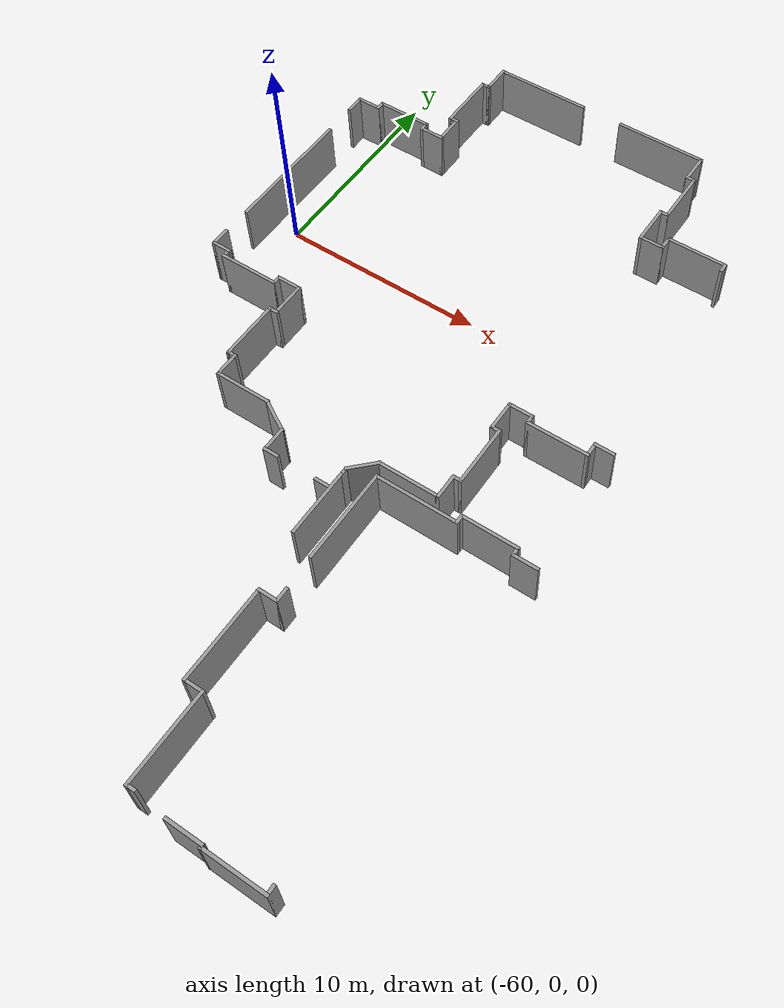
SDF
<sdf version="1.7">
 <model name="Building_1">
  <pose>-6.53713 -6.30976 0 0 -0 0</pose>
  <link name="Wall_13">
   <collision name="Wall_13_Collision">
    <geometry><box><size>0.5 0.15 2.5</size></box></geometry>
    <pose>0 0 1.25 0 -0 0</pose>
   </collision>
   <visual name="Wall_13_Visual">
    <pose>0 0 1.25 0 -0 0</pose>
    <geometry><box><size>0.5 0.15 2.5</size></box></geometry>
    <material>
     <script><uri>file://media/materials/scripts/gazebo.material</uri><name>Gazebo/Grey</name></script>
     <ambient>1 1 1 1</ambient>
    </material>
    <meta><layer>0</layer></meta>
   </visual>
   <pose>-34.9711 -18.833 0 0 -0 -1.5708</pose>
  </link>
  <link name="Wall_14">
   <collision name="Wall_14_Collision">
    <geometry><box><size>3 0.15 2.5</size></box></geometry>
    <pose>0 0 1.25 0 -0 0</pose>
   </collision>
   <visual name="Wall_14_Visual">
    <pose>0 0 1.25 0 -0 0</pose>
    <geometry><box><size>3 0.15 2.5</size></box></geometry>
    <material>
     <script><uri>file://media/materials/scripts/gazebo.material</uri><name>Gazebo/Grey</name></script>
     <ambient>1 1 1 1</ambient>
    </material>
    <meta><layer>0</layer></meta>
   </visual>
   <pose>-36.3961 -19.008 0 0 -0 3.14159</pose>
  </link>
  <link name="Wall_15">
   <collision name="Wall_15_Collision">
    <geometry><box><size>0.25 0.15 2.5</size></box></geometry>
    <pose>0 0 1.25 0 -0 0</pose>
   </collision>
   <visual name="Wall_15_Visual">
    <pose>0 0 1.25 0 -0 0</pose>
    <geometry><box><size>0.25 0.15 2.5</size></box></geometry>
    <material>
     <script><uri>file://media/materials/scripts/gazebo.material</uri><name>Gazebo/Grey</name></script>
     <ambient>1 1 1 1</ambient>
    </material>
    <meta><layer>0</layer></meta>
   </visual>
   <pose>-37.8341 -18.9597 0 0 -0 1.8326</pose>
  </link>
  <link name="Wall_16">
   <collision name="Wall_16_Collision">
    <geometry><box><size>1.75 0.15 2.5</size></box></geometry>
    <pose>0 0 1.25 0 -0 0</pose>
   </collision>
   <visual name="Wall_16_Visual">
    <pose>0 0 1.25 0 -0 0</pose>
    <geometry><box><size>1.75 0.15 2.5</size></box></geometry>
    <material>
     <script><uri>file://media/materials/scripts/gazebo.material</uri><name>Gazebo/Grey</name></script>
     <ambient>1 1 1 1</ambient>
    </material>
    <meta><layer>0</layer></meta>
   </visual>
   <pose>-38.647 -18.9114 0 0 -0 3.14159</pose>
  </link>
  <link name="Wall_18">
   <collision name="Wall_18_Collision">
    <geometry><box><size>0.5 0.15 2.5</size></box></geometry>
    <pose>0 0 1.25 0 -0 0</pose>
   </collision>
   <visual name="Wall_18_Visual">
    <pose>0 0 1.25 0 -0 0</pose>
    <geometry><box><size>0.5 0.15 2.5</size></box></geometry>
    <material>
     <script><uri>file://media/materials/scripts/gazebo.material</uri><name>Gazebo/Grey</name></script>
     <ambient>1 1 1 1</ambient>
    </material>
    <meta><layer>0</layer></meta>
   </visual>
   <pose>-41.1811 -18.7555 0 0 -0 3.14159</pose>
  </link>
  <link name="Wall_19">
   <collision name="Wall_19_Collision">
    <geometry><box><size>4.25 0.15 2.5</size></box></geometry>
    <pose>0 0 1.25 0 -0 0</pose>
   </collision>
   <visual name="Wall_19_Visual">
    <pose>0 0 1.25 0 -0 0</pose>
    <geometry><box><size>4.25 0.15 2.5</size></box></geometry>
    <material>
     <script><uri>file://media/materials/scripts/gazebo.material</uri><name>Gazebo/Grey</name></script>
     <ambient>1 1 1 1</ambient>
    </material>
    <meta><layer>0</layer></meta>
   </visual>
   <pose>-41.3561 -16.7055 0 0 -0 1.5708</pose>
  </link>
  <link name="Wall_20">
   <collision name="Wall_20_Collision">
    <geometry><box><size>1 0.15 2.5</size></box></geometry>
    <pose>0 0 1.25 0 -0 0</pose>
   </collision>
   <visual name="Wall_20_Visual">
    <pose>0 0 1.25 0 -0 0</pose>
    <geometry><box><size>1 0.15 2.5</size></box></geometry>
    <material>
     <script><uri>file://media/materials/scripts/gazebo.material</uri><name>Gazebo/Grey</name></script>
     <ambient>1 1 1 1</ambient>
    </material>
    <meta><layer>0</layer></meta>
   </visual>
   <pose>-41.7811 -14.6555 0 0 -0 3.14159</pose>
  </link>
  <link name="Wall_207">
   <collision name="Wall_207_Collision">
    <geometry><box><size>0.5 0.15 2.5</size></box></geometry>
    <pose>0 0 1.25 0 -0 0</pose>
   </collision>
   <visual name="Wall_207_Visual">
    <pose>0 0 1.25 0 -0 0</pose>
    <geometry><box><size>0.5 0.15 2.5</size></box></geometry>
    <material>
     <script><uri>file://media/materials/scripts/gazebo.material</uri><name>Gazebo/Grey</name></script>
     <ambient>1 1 1 1</ambient>
    </material>
    <meta><layer>0</layer></meta>
   </visual>
   <pose>-34.8693 13.6085 0 0 -0 1.5708</pose>
  </link>
  <link name="Wall_208">
   <collision name="Wall_208_Collision">
    <geometry><box><size>3 0.15 2.5</size></box></geometry>
    <pose>0 0 1.25 0 -0 0</pose>
   </collision>
   <visual name="Wall_208_Visual">
    <pose>0 0 1.25 0 -0 0</pose>
    <geometry><box><size>3 0.15 2.5</size></box></geometry>
    <material>
     <script><uri>file://media/materials/scripts/gazebo.material</uri><name>Gazebo/Grey</name></script>
     <ambient>1 1 1 1</ambient>
    </material>
    <meta><layer>0</layer></meta>
   </visual>
   <pose>-36.2943 13.7835 0 0 -0 3.14159</pose>
  </link>
  <link name="Wall_209">
   <collision name="Wall_209_Collision">
    <geometry><box><size>0.75 0.15 2.5</size></box></geometry>
    <pose>0 0 1.25 0 -0 0</pose>
   </collision>
   <visual name="Wall_209_Visual">
    <pose>0 0 1.25 0 -0 0</pose>
    <geometry><box><size>0.75 0.15 2.5</size></box></geometry>
    <material>
     <script><uri>file://media/materials/scripts/gazebo.material</uri><name>Gazebo/Grey</name></script>
     <ambient>1 1 1 1</ambient>
    </material>
    <meta><layer>0</layer></meta>
   </visual>
   <pose>-37.7193 13.4835 0 0 -0 -1.5708</pose>
  </link>
  <link name="Wall_21">
   <collision name="Wall_21_Collision">
    <geometry><box><size>4.5 0.15 2.5</size></box></geometry>
    <pose>0 0 1.25 0 -0 0</pose>
   </collision>
   <visual name="Wall_21_Visual">
    <pose>0 0 1.25 0 -0 0</pose>
    <geometry><box><size>4.5 0.15 2.5</size></box></geometry>
    <material>
     <script><uri>file://media/materials/scripts/gazebo.material</uri><name>Gazebo/Grey</name></script>
     <ambient>1 1 1 1</ambient>
    </material>
    <meta><layer>0</layer></meta>
   </visual>
   <pose>-42.2061 -12.4805 0 0 -0 1.5708</pose>
  </link>
  <link name="Wall_210">
   <collision name="Wall_210_Collision">
    <geometry><box><size>1.25 0.15 2.5</size></box></geometry>
    <pose>0 0 1.25 0 -0 0</pose>
   </collision>
   <visual name="Wall_210_Visual">
    <pose>0 0 1.25 0 -0 0</pose>
    <geometry><box><size>1.25 0.15 2.5</size></box></geometry>
    <material>
     <script><uri>file://media/materials/scripts/gazebo.material</uri><name>Gazebo/Grey</name></script>
     <ambient>1 1 1 1</ambient>
    </material>
    <meta><layer>0</layer></meta>
   </visual>
   <pose>-38.2693 13.1835 0 0 -0 3.14159</pose>
  </link>
  <link name="Wall_211">
   <collision name="Wall_211_Collision">
    <geometry><box><size>2 0.15 2.5</size></box></geometry>
    <pose>0 0 1.25 0 -0 0</pose>
   </collision>
   <visual name="Wall_211_Visual">
    <pose>0 0 1.25 0 -0 0</pose>
    <geometry><box><size>2 0.15 2.5</size></box></geometry>
    <material>
     <script><uri>file://media/materials/scripts/gazebo.material</uri><name>Gazebo/Grey</name></script>
     <ambient>1 1 1 1</ambient>
    </material>
    <meta><layer>0</layer></meta>
   </visual>
   <pose>-38.8193 14.1085 0 0 -0 1.5708</pose>
  </link>
  <link name="Wall_212">
   <collision name="Wall_212_Collision">
    <geometry><box><size>0.5 0.15 2.5</size></box></geometry>
    <pose>0 0 1.25 0 -0 0</pose>
   </collision>
   <visual name="Wall_212_Visual">
    <pose>0 0 1.25 0 -0 0</pose>
    <geometry><box><size>0.5 0.15 2.5</size></box></geometry>
    <material>
     <script><uri>file://media/materials/scripts/gazebo.material</uri><name>Gazebo/Grey</name></script>
     <ambient>1 1 1 1</ambient>
    </material>
    <meta><layer>0</layer></meta>
   </visual>
   <pose>-38.6443 15.0335 0 0 -0 0</pose>
  </link>
  <link name="Wall_213">
   <collision name="Wall_213_Collision">
    <geometry><box><size>2.75 0.15 2.5</size></box></geometry>
    <pose>0 0 1.25 0 -0 0</pose>
   </collision>
   <visual name="Wall_213_Visual">
    <pose>0 0 1.25 0 -0 0</pose>
    <geometry><box><size>2.75 0.15 2.5</size></box></geometry>
    <material>
     <script><uri>file://media/materials/scripts/gazebo.material</uri><name>Gazebo/Grey</name></script>
     <ambient>1 1 1 1</ambient>
    </material>
    <meta><layer>0</layer></meta>
   </visual>
   <pose>-38.4693 16.3335 0 0 -0 1.5708</pose>
  </link>
  <link name="Wall_214">
   <collision name="Wall_214_Collision">
    <geometry><box><size>0.5 0.15 2.5</size></box></geometry>
    <pose>0 0 1.25 0 -0 0</pose>
   </collision>
   <visual name="Wall_214_Visual">
    <pose>0 0 1.25 0 -0 0</pose>
    <geometry><box><size>0.5 0.15 2.5</size></box></geometry>
    <material>
     <script><uri>file://media/materials/scripts/gazebo.material</uri><name>Gazebo/Grey</name></script>
     <ambient>1 1 1 1</ambient>
    </material>
    <meta><layer>0</layer></meta>
   </visual>
   <pose>-38.6443 17.6335 0 0 -0 3.14159</pose>
  </link>
  <link name="Wall_215">
   <collision name="Wall_215_Collision">
    <geometry><box><size>1.5 0.15 2.5</size></box></geometry>
    <pose>0 0 1.25 0 -0 0</pose>
   </collision>
   <visual name="Wall_215_Visual">
    <pose>0 0 1.25 0 -0 0</pose>
    <geometry><box><size>1.5 0.15 2.5</size></box></geometry>
    <material>
     <script><uri>file://media/materials/scripts/gazebo.material</uri><name>Gazebo/Grey</name></script>
     <ambient>1 1 1 1</ambient>
    </material>
    <meta><layer>0</layer></meta>
   </visual>
   <pose>-38.8193 18.3085 0 0 -0 1.5708</pose>
  </link>
  <link name="Wall_216">
   <collision name="Wall_216_Collision">
    <geometry><box><size>4.5 0.15 2.5</size></box></geometry>
    <pose>0 0 1.25 0 -0 0</pose>
   </collision>
   <visual name="Wall_216_Visual">
    <pose>0 0 1.25 0 -0 0</pose>
    <geometry><box><size>4.5 0.15 2.5</size></box></geometry>
    <material>
     <script><uri>file://media/materials/scripts/gazebo.material</uri><name>Gazebo/Grey</name></script>
     <ambient>1 1 1 1</ambient>
    </material>
    <meta><layer>0</layer></meta>
   </visual>
   <pose>-40.9943 18.9835 0 0 -0 3.14159</pose>
  </link>
  <link name="Wall_218">
   <collision name="Wall_218_Collision">
    <geometry><box><size>4.75 0.15 2.5</size></box></geometry>
    <pose>0 0 1.25 0 -0 0</pose>
   </collision>
   <visual name="Wall_218_Visual">
    <pose>0 0 1.25 0 -0 0</pose>
    <geometry><box><size>4.75 0.15 2.5</size></box></geometry>
    <material>
     <script><uri>file://media/materials/scripts/gazebo.material</uri><name>Gazebo/Grey</name></script>
     <ambient>1 1 1 1</ambient>
    </material>
    <meta><layer>0</layer></meta>
   </visual>
   <pose>-47.62 19.0016 0 0 -0 3.14159</pose>
  </link>
  <link name="Wall_219">
   <collision name="Wall_219_Collision">
    <geometry><box><size>1.5 0.15 2.5</size></box></geometry>
    <pose>0 0 1.25 0 -0 0</pose>
   </collision>
   <visual name="Wall_219_Visual">
    <pose>0 0 1.25 0 -0 0</pose>
    <geometry><box><size>1.5 0.15 2.5</size></box></geometry>
    <material>
     <script><uri>file://media/materials/scripts/gazebo.material</uri><name>Gazebo/Grey</name></script>
     <ambient>1 1 1 1</ambient>
    </material>
    <meta><layer>0</layer></meta>
   </visual>
   <pose>-49.92 18.3266 0 0 -0 -1.5708</pose>
  </link>
  <link name="Wall_22">
   <collision name="Wall_22_Collision">
    <geometry><box><size>1 0.15 2.5</size></box></geometry>
    <pose>0 0 1.25 0 -0 0</pose>
   </collision>
   <visual name="Wall_22_Visual">
    <pose>0 0 1.25 0 -0 0</pose>
    <geometry><box><size>1 0.15 2.5</size></box></geometry>
    <material>
     <script><uri>file://media/materials/scripts/gazebo.material</uri><name>Gazebo/Grey</name></script>
     <ambient>1 1 1 1</ambient>
    </material>
    <meta><layer>0</layer></meta>
   </visual>
   <pose>-41.7811 -10.3055 0 0 -0 0</pose>
  </link>
  <link name="Wall_220">
   <collision name="Wall_220_Collision">
    <geometry><box><size>0.5 0.15 2.5</size></box></geometry>
    <pose>0 0 1.25 0 -0 0</pose>
   </collision>
   <visual name="Wall_220_Visual">
    <pose>0 0 1.25 0 -0 0</pose>
    <geometry><box><size>0.5 0.15 2.5</size></box></geometry>
    <material>
     <script><uri>file://media/materials/scripts/gazebo.material</uri><name>Gazebo/Grey</name></script>
     <ambient>1 1 1 1</ambient>
    </material>
    <meta><layer>0</layer></meta>
   </visual>
   <pose>-50.095 17.6516 0 0 -0 3.14159</pose>
  </link>
  <link name="Wall_221">
   <collision name="Wall_221_Collision">
    <geometry><box><size>3 0.15 2.5</size></box></geometry>
    <pose>0 0 1.25 0 -0 0</pose>
   </collision>
   <visual name="Wall_221_Visual">
    <pose>0 0 1.25 0 -0 0</pose>
    <geometry><box><size>3 0.15 2.5</size></box></geometry>
    <material>
     <script><uri>file://media/materials/scripts/gazebo.material</uri><name>Gazebo/Grey</name></script>
     <ambient>1 1 1 1</ambient>
    </material>
    <meta><layer>0</layer></meta>
   </visual>
   <pose>-50.27 16.2266 0 0 -0 -1.5708</pose>
  </link>
  <link name="Wall_222">
   <collision name="Wall_222_Collision">
    <geometry><box><size>0.5 0.15 2.5</size></box></geometry>
    <pose>0 0 1.25 0 -0 0</pose>
   </collision>
   <visual name="Wall_222_Visual">
    <pose>0 0 1.25 0 -0 0</pose>
    <geometry><box><size>0.5 0.15 2.5</size></box></geometry>
    <material>
     <script><uri>file://media/materials/scripts/gazebo.material</uri><name>Gazebo/Grey</name></script>
     <ambient>1 1 1 1</ambient>
    </material>
    <meta><layer>0</layer></meta>
   </visual>
   <pose>-50.095 14.8016 0 0 -0 0</pose>
  </link>
  <link name="Wall_223">
   <collision name="Wall_223_Collision">
    <geometry><box><size>1.5 0.15 2.5</size></box></geometry>
    <pose>0 0 1.25 0 -0 0</pose>
   </collision>
   <visual name="Wall_223_Visual">
    <pose>0 0 1.25 0 -0 0</pose>
    <geometry><box><size>1.5 0.15 2.5</size></box></geometry>
    <material>
     <script><uri>file://media/materials/scripts/gazebo.material</uri><name>Gazebo/Grey</name></script>
     <ambient>1 1 1 1</ambient>
    </material>
    <meta><layer>0</layer></meta>
   </visual>
   <pose>-49.92 14.1266 0 0 -0 -1.5708</pose>
  </link>
  <link name="Wall_224">
   <collision name="Wall_224_Collision">
    <geometry><box><size>1.25 0.15 2.5</size></box></geometry>
    <pose>0 0 1.25 0 -0 0</pose>
   </collision>
   <visual name="Wall_224_Visual">
    <pose>0 0 1.25 0 -0 0</pose>
    <geometry><box><size>1.25 0.15 2.5</size></box></geometry>
    <material>
     <script><uri>file://media/materials/scripts/gazebo.material</uri><name>Gazebo/Grey</name></script>
     <ambient>1 1 1 1</ambient>
    </material>
    <meta><layer>0</layer></meta>
   </visual>
   <pose>-50.47 13.4516 0 0 -0 3.14159</pose>
  </link>
  <link name="Wall_225">
   <collision name="Wall_225_Collision">
    <geometry><box><size>0.5 0.15 2.5</size></box></geometry>
    <pose>0 0 1.25 0 -0 0</pose>
   </collision>
   <visual name="Wall_225_Visual">
    <pose>0 0 1.25 0 -0 0</pose>
    <geometry><box><size>0.5 0.15 2.5</size></box></geometry>
    <material>
     <script><uri>file://media/materials/scripts/gazebo.material</uri><name>Gazebo/Grey</name></script>
     <ambient>1 1 1 1</ambient>
    </material>
    <meta><layer>0</layer></meta>
   </visual>
   <pose>-51.02 13.6266 0 0 -0 1.5708</pose>
  </link>
  <link name="Wall_226">
   <collision name="Wall_226_Collision">
    <geometry><box><size>2.75 0.15 2.5</size></box></geometry>
    <pose>0 0 1.25 0 -0 0</pose>
   </collision>
   <visual name="Wall_226_Visual">
    <pose>0 0 1.25 0 -0 0</pose>
    <geometry><box><size>2.75 0.15 2.5</size></box></geometry>
    <material>
     <script><uri>file://media/materials/scripts/gazebo.material</uri><name>Gazebo/Grey</name></script>
     <ambient>1 1 1 1</ambient>
    </material>
    <meta><layer>0</layer></meta>
   </visual>
   <pose>-52.32 13.8016 0 0 -0 3.14159</pose>
  </link>
  <link name="Wall_227">
   <collision name="Wall_227_Collision">
    <geometry><box><size>0.5 0.15 2.5</size></box></geometry>
    <pose>0 0 1.25 0 -0 0</pose>
   </collision>
   <visual name="Wall_227_Visual">
    <pose>0 0 1.25 0 -0 0</pose>
    <geometry><box><size>0.5 0.15 2.5</size></box></geometry>
    <material>
     <script><uri>file://media/materials/scripts/gazebo.material</uri><name>Gazebo/Grey</name></script>
     <ambient>1 1 1 1</ambient>
    </material>
    <meta><layer>0</layer></meta>
   </visual>
   <pose>-53.62 13.6266 0 0 -0 -1.5708</pose>
  </link>
  <link name="Wall_228">
   <collision name="Wall_228_Collision">
    <geometry><box><size>1.25 0.15 2.5</size></box></geometry>
    <pose>0 0 1.25 0 -0 0</pose>
   </collision>
   <visual name="Wall_228_Visual">
    <pose>0 0 1.25 0 -0 0</pose>
    <geometry><box><size>1.25 0.15 2.5</size></box></geometry>
    <material>
     <script><uri>file://media/materials/scripts/gazebo.material</uri><name>Gazebo/Grey</name></script>
     <ambient>1 1 1 1</ambient>
    </material>
    <meta><layer>0</layer></meta>
   </visual>
   <pose>-54.17 13.4516 0 0 -0 3.14159</pose>
  </link>
  <link name="Wall_229">
   <collision name="Wall_229_Collision">
    <geometry><box><size>1 0.15 2.5</size></box></geometry>
    <pose>0 0 1.25 0 -0 0</pose>
   </collision>
   <visual name="Wall_229_Visual">
    <pose>0 0 1.25 0 -0 0</pose>
    <geometry><box><size>1 0.15 2.5</size></box></geometry>
    <material>
     <script><uri>file://media/materials/scripts/gazebo.material</uri><name>Gazebo/Grey</name></script>
     <ambient>1 1 1 1</ambient>
    </material>
    <meta><layer>0</layer></meta>
   </visual>
   <pose>-54.72 13.0266 0 0 -0 -1.5708</pose>
  </link>
  <link name="Wall_23">
   <collision name="Wall_23_Collision">
    <geometry><box><size>0.75 0.15 2.5</size></box></geometry>
    <pose>0 0 1.25 0 -0 0</pose>
   </collision>
   <visual name="Wall_23_Visual">
    <pose>0 0 1.25 0 -0 0</pose>
    <geometry><box><size>0.75 0.15 2.5</size></box></geometry>
    <material>
     <script><uri>file://media/materials/scripts/gazebo.material</uri><name>Gazebo/Grey</name></script>
     <ambient>1 1 1 1</ambient>
    </material>
    <meta><layer>0</layer></meta>
   </visual>
   <pose>-41.3561 -10.0055 0 0 -0 1.5708</pose>
  </link>
  <link name="Wall_231">
   <collision name="Wall_231_Collision">
    <geometry><box><size>6.5 0.15 2.5</size></box></geometry>
    <pose>0 0 1.25 0 -0 0</pose>
   </collision>
   <visual name="Wall_231_Visual">
    <pose>0 0 1.25 0 -0 0</pose>
    <geometry><box><size>6.5 0.15 2.5</size></box></geometry>
    <material>
     <script><uri>file://media/materials/scripts/gazebo.material</uri><name>Gazebo/Grey</name></script>
     <ambient>1 1 1 1</ambient>
    </material>
    <meta><layer>0</layer></meta>
   </visual>
   <pose>-54.693 7.74092 0 0 -0 -1.5708</pose>
  </link>
  <link name="Wall_233">
   <collision name="Wall_233_Collision">
    <geometry><box><size>1 0.15 2.5</size></box></geometry>
    <pose>0 0 1.25 0 -0 0</pose>
   </collision>
   <visual name="Wall_233_Visual">
    <pose>0 0 1.25 0 -0 0</pose>
    <geometry><box><size>1 0.15 2.5</size></box></geometry>
    <material>
     <script><uri>file://media/materials/scripts/gazebo.material</uri><name>Gazebo/Grey</name></script>
     <ambient>1 1 1 1</ambient>
    </material>
    <meta><layer>0</layer></meta>
   </visual>
   <pose>-54.7332 2.68685 0 0 -0 -1.5708</pose>
  </link>
  <link name="Wall_234">
   <collision name="Wall_234_Collision">
    <geometry><box><size>1 0.15 2.5</size></box></geometry>
    <pose>0 0 1.25 0 -0 0</pose>
   </collision>
   <visual name="Wall_234_Visual">
    <pose>0 0 1.25 0 -0 0</pose>
    <geometry><box><size>1 0.15 2.5</size></box></geometry>
    <material>
     <script><uri>file://media/materials/scripts/gazebo.material</uri><name>Gazebo/Grey</name></script>
     <ambient>1 1 1 1</ambient>
    </material>
    <meta><layer>0</layer></meta>
   </visual>
   <pose>-54.3082 2.26185 0 0 -0 0</pose>
  </link>
  <link name="Wall_235">
   <collision name="Wall_235_Collision">
    <geometry><box><size>0.5 0.15 2.5</size></box></geometry>
    <pose>0 0 1.25 0 -0 0</pose>
   </collision>
   <visual name="Wall_235_Visual">
    <pose>0 0 1.25 0 -0 0</pose>
    <geometry><box><size>0.5 0.15 2.5</size></box></geometry>
    <material>
     <script><uri>file://media/materials/scripts/gazebo.material</uri><name>Gazebo/Grey</name></script>
     <ambient>1 1 1 1</ambient>
    </material>
    <meta><layer>0</layer></meta>
   </visual>
   <pose>-53.8832 2.08685 0 0 -0 -1.5708</pose>
  </link>
  <link name="Wall_236">
   <collision name="Wall_236_Collision">
    <geometry><box><size>3 0.15 2.5</size></box></geometry>
    <pose>0 0 1.25 0 -0 0</pose>
   </collision>
   <visual name="Wall_236_Visual">
    <pose>0 0 1.25 0 -0 0</pose>
    <geometry><box><size>3 0.15 2.5</size></box></geometry>
    <material>
     <script><uri>file://media/materials/scripts/gazebo.material</uri><name>Gazebo/Grey</name></script>
     <ambient>1 1 1 1</ambient>
    </material>
    <meta><layer>0</layer></meta>
   </visual>
   <pose>-52.4582 1.91185 0 0 -0 0</pose>
  </link>
  <link name="Wall_237">
   <collision name="Wall_237_Collision">
    <geometry><box><size>0.5 0.15 2.5</size></box></geometry>
    <pose>0 0 1.25 0 -0 0</pose>
   </collision>
   <visual name="Wall_237_Visual">
    <pose>0 0 1.25 0 -0 0</pose>
    <geometry><box><size>0.5 0.15 2.5</size></box></geometry>
    <material>
     <script><uri>file://media/materials/scripts/gazebo.material</uri><name>Gazebo/Grey</name></script>
     <ambient>1 1 1 1</ambient>
    </material>
    <meta><layer>0</layer></meta>
   </visual>
   <pose>-51.0332 2.08685 0 0 -0 1.5708</pose>
  </link>
  <link name="Wall_238">
   <collision name="Wall_238_Collision">
    <geometry><box><size>1.25 0.15 2.5</size></box></geometry>
    <pose>0 0 1.25 0 -0 0</pose>
   </collision>
   <visual name="Wall_238_Visual">
    <pose>0 0 1.25 0 -0 0</pose>
    <geometry><box><size>1.25 0.15 2.5</size></box></geometry>
    <material>
     <script><uri>file://media/materials/scripts/gazebo.material</uri><name>Gazebo/Grey</name></script>
     <ambient>1 1 1 1</ambient>
    </material>
    <meta><layer>0</layer></meta>
   </visual>
   <pose>-50.4832 2.26185 0 0 -0 0</pose>
  </link>
  <link name="Wall_239">
   <collision name="Wall_239_Collision">
    <geometry><box><size>1.75 0.15 2.5</size></box></geometry>
    <pose>0 0 1.25 0 -0 0</pose>
   </collision>
   <visual name="Wall_239_Visual">
    <pose>0 0 1.25 0 -0 0</pose>
    <geometry><box><size>1.75 0.15 2.5</size></box></geometry>
    <material>
     <script><uri>file://media/materials/scripts/gazebo.material</uri><name>Gazebo/Grey</name></script>
     <ambient>1 1 1 1</ambient>
    </material>
    <meta><layer>0</layer></meta>
   </visual>
   <pose>-49.9332 1.46185 0 0 -0 -1.5708</pose>
  </link>
  <link name="Wall_240">
   <collision name="Wall_240_Collision">
    <geometry><box><size>0.5 0.15 2.5</size></box></geometry>
    <pose>0 0 1.25 0 -0 0</pose>
   </collision>
   <visual name="Wall_240_Visual">
    <pose>0 0 1.25 0 -0 0</pose>
    <geometry><box><size>0.5 0.15 2.5</size></box></geometry>
    <material>
     <script><uri>file://media/materials/scripts/gazebo.material</uri><name>Gazebo/Grey</name></script>
     <ambient>1 1 1 1</ambient>
    </material>
    <meta><layer>0</layer></meta>
   </visual>
   <pose>-50.1082 0.66185 0 0 -0 3.14159</pose>
  </link>
  <link name="Wall_241">
   <collision name="Wall_241_Collision">
    <geometry><box><size>3 0.15 2.5</size></box></geometry>
    <pose>0 0 1.25 0 -0 0</pose>
   </collision>
   <visual name="Wall_241_Visual">
    <pose>0 0 1.25 0 -0 0</pose>
    <geometry><box><size>3 0.15 2.5</size></box></geometry>
    <material>
     <script><uri>file://media/materials/scripts/gazebo.material</uri><name>Gazebo/Grey</name></script>
     <ambient>1 1 1 1</ambient>
    </material>
    <meta><layer>0</layer></meta>
   </visual>
   <pose>-50.2832 -0.76315 0 0 -0 -1.5708</pose>
  </link>
  <link name="Wall_242">
   <collision name="Wall_242_Collision">
    <geometry><box><size>0.5 0.15 2.5</size></box></geometry>
    <pose>0 0 1.25 0 -0 0</pose>
   </collision>
   <visual name="Wall_242_Visual">
    <pose>0 0 1.25 0 -0 0</pose>
    <geometry><box><size>0.5 0.15 2.5</size></box></geometry>
    <material>
     <script><uri>file://media/materials/scripts/gazebo.material</uri><name>Gazebo/Grey</name></script>
     <ambient>1 1 1 1</ambient>
    </material>
    <meta><layer>0</layer></meta>
   </visual>
   <pose>-50.1082 -2.18815 0 0 -0 0</pose>
  </link>
  <link name="Wall_243">
   <collision name="Wall_243_Collision">
    <geometry><box><size>1.25 0.15 2.5</size></box></geometry>
    <pose>0 0 1.25 0 -0 0</pose>
   </collision>
   <visual name="Wall_243_Visual">
    <pose>0 0 1.25 0 -0 0</pose>
    <geometry><box><size>1.25 0.15 2.5</size></box></geometry>
    <material>
     <script><uri>file://media/materials/scripts/gazebo.material</uri><name>Gazebo/Grey</name></script>
     <ambient>1 1 1 1</ambient>
    </material>
    <meta><layer>0</layer></meta>
   </visual>
   <pose>-49.9332 -2.73815 0 0 -0 -1.5708</pose>
  </link>
  <link name="Wall_244">
   <collision name="Wall_244_Collision">
    <geometry><box><size>2.75 0.15 2.5</size></box></geometry>
    <pose>0 0 1.25 0 -0 0</pose>
   </collision>
   <visual name="Wall_244_Visual">
    <pose>0 0 1.25 0 -0 0</pose>
    <geometry><box><size>2.75 0.15 2.5</size></box></geometry>
    <material>
     <script><uri>file://media/materials/scripts/gazebo.material</uri><name>Gazebo/Grey</name></script>
     <ambient>1 1 1 1</ambient>
    </material>
    <meta><layer>0</layer></meta>
   </visual>
   <pose>-48.6332 -3.28815 0 0 -0 0</pose>
  </link>
  <link name="Wall_245">
   <collision name="Wall_245_Collision">
    <geometry><box><size>1.75 0.15 2.5</size></box></geometry>
    <pose>0 0 1.25 0 -0 0</pose>
   </collision>
   <visual name="Wall_245_Visual">
    <pose>0 0 1.25 0 -0 0</pose>
    <geometry><box><size>1.75 0.15 2.5</size></box></geometry>
    <material>
     <script><uri>file://media/materials/scripts/gazebo.material</uri><name>Gazebo/Grey</name></script>
     <ambient>1 1 1 1</ambient>
    </material>
    <meta><layer>0</layer></meta>
   </visual>
   <pose>-46.6404 -3.68815 0 0 -0 -0.523599</pose>
  </link>
  <link name="Wall_246">
   <collision name="Wall_246_Collision">
    <geometry><box><size>1.25 0.15 2.5</size></box></geometry>
    <pose>0 0 1.25 0 -0 0</pose>
   </collision>
   <visual name="Wall_246_Visual">
    <pose>0 0 1.25 0 -0 0</pose>
    <geometry><box><size>1.25 0.15 2.5</size></box></geometry>
    <material>
     <script><uri>file://media/materials/scripts/gazebo.material</uri><name>Gazebo/Grey</name></script>
     <ambient>1 1 1 1</ambient>
    </material>
    <meta><layer>0</layer></meta>
   </visual>
   <pose>-45.9475 -4.63815 0 0 -0 -1.5708</pose>
  </link>
  <link name="Wall_247">
   <collision name="Wall_247_Collision">
    <geometry><box><size>0.75 0.15 2.5</size></box></geometry>
    <pose>0 0 1.25 0 -0 0</pose>
   </collision>
   <visual name="Wall_247_Visual">
    <pose>0 0 1.25 0 -0 0</pose>
    <geometry><box><size>0.75 0.15 2.5</size></box></geometry>
    <material>
     <script><uri>file://media/materials/scripts/gazebo.material</uri><name>Gazebo/Grey</name></script>
     <ambient>1 1 1 1</ambient>
    </material>
    <meta><layer>0</layer></meta>
   </visual>
   <pose>-45.6475 -5.18815 0 0 -0 0</pose>
  </link>
  <link name="Wall_249">
   <collision name="Wall_249_Collision">
    <geometry><box><size>0.75 0.15 2.5</size></box></geometry>
    <pose>0 0 1.25 0 -0 0</pose>
   </collision>
   <visual name="Wall_249_Visual">
    <pose>0 0 1.25 0 -0 0</pose>
    <geometry><box><size>0.75 0.15 2.5</size></box></geometry>
    <material>
     <script><uri>file://media/materials/scripts/gazebo.material</uri><name>Gazebo/Grey</name></script>
     <ambient>1 1 1 1</ambient>
    </material>
    <meta><layer>0</layer></meta>
   </visual>
   <pose>-43.069 -5.19505 0 0 -0 0</pose>
  </link>
  <link name="Wall_25">
   <collision name="Wall_25_Collision">
    <geometry><box><size>4.5 0.15 2.5</size></box></geometry>
    <pose>0 0 1.25 0 -0 0</pose>
   </collision>
   <visual name="Wall_25_Visual">
    <pose>0 0 1.25 0 -0 0</pose>
    <geometry><box><size>4.5 0.15 2.5</size></box></geometry>
    <material>
     <script><uri>file://media/materials/scripts/gazebo.material</uri><name>Gazebo/Grey</name></script>
     <ambient>1 1 1 1</ambient>
    </material>
    <meta><layer>0</layer></meta>
   </visual>
   <pose>-41.4224 -5.91731 0 0 -0 1.5708</pose>
  </link>
  <link name="Wall_26">
   <collision name="Wall_26_Collision">
    <geometry><box><size>4 0.15 2.5</size></box></geometry>
    <pose>0 0 1.25 0 -0 0</pose>
   </collision>
   <visual name="Wall_26_Visual">
    <pose>0 0 1.25 0 -0 0</pose>
    <geometry><box><size>4 0.15 2.5</size></box></geometry>
    <material>
     <script><uri>file://media/materials/scripts/gazebo.material</uri><name>Gazebo/Grey</name></script>
     <ambient>1 1 1 1</ambient>
    </material>
    <meta><layer>0</layer></meta>
   </visual>
   <pose>-39.4974 -3.74231 0 0 -0 0</pose>
  </link>
  <link name="Wall_27">
   <collision name="Wall_27_Collision">
    <geometry><box><size>0.5 0.15 2.5</size></box></geometry>
    <pose>0 0 1.25 0 -0 0</pose>
   </collision>
   <visual name="Wall_27_Visual">
    <pose>0 0 1.25 0 -0 0</pose>
    <geometry><box><size>0.5 0.15 2.5</size></box></geometry>
    <material>
     <script><uri>file://media/materials/scripts/gazebo.material</uri><name>Gazebo/Grey</name></script>
     <ambient>1 1 1 1</ambient>
    </material>
    <meta><layer>0</layer></meta>
   </visual>
   <pose>-37.5724 -3.56731 0 0 -0 1.5708</pose>
  </link>
  <link name="Wall_28">
   <collision name="Wall_28_Collision">
    <geometry><box><size>2.75 0.15 2.5</size></box></geometry>
    <pose>0 0 1.25 0 -0 0</pose>
   </collision>
   <visual name="Wall_28_Visual">
    <pose>0 0 1.25 0 -0 0</pose>
    <geometry><box><size>2.75 0.15 2.5</size></box></geometry>
    <material>
     <script><uri>file://media/materials/scripts/gazebo.material</uri><name>Gazebo/Grey</name></script>
     <ambient>1 1 1 1</ambient>
    </material>
    <meta><layer>0</layer></meta>
   </visual>
   <pose>-36.2724 -3.39231 0 0 -0 0</pose>
  </link>
  <link name="Wall_29">
   <collision name="Wall_29_Collision">
    <geometry><box><size>0.5 0.15 2.5</size></box></geometry>
    <pose>0 0 1.25 0 -0 0</pose>
   </collision>
   <visual name="Wall_29_Visual">
    <pose>0 0 1.25 0 -0 0</pose>
    <geometry><box><size>0.5 0.15 2.5</size></box></geometry>
    <material>
     <script><uri>file://media/materials/scripts/gazebo.material</uri><name>Gazebo/Grey</name></script>
     <ambient>1 1 1 1</ambient>
    </material>
    <meta><layer>0</layer></meta>
   </visual>
   <pose>-34.9724 -3.56731 0 0 -0 -1.5708</pose>
  </link>
  <link name="Wall_30">
   <collision name="Wall_30_Collision">
    <geometry><box><size>1.25 0.15 2.5</size></box></geometry>
    <pose>0 0 1.25 0 -0 0</pose>
   </collision>
   <visual name="Wall_30_Visual">
    <pose>0 0 1.25 0 -0 0</pose>
    <geometry><box><size>1.25 0.15 2.5</size></box></geometry>
    <material>
     <script><uri>file://media/materials/scripts/gazebo.material</uri><name>Gazebo/Grey</name></script>
     <ambient>1 1 1 1</ambient>
    </material>
    <meta><layer>0</layer></meta>
   </visual>
   <pose>-34.4224 -3.74231 0 0 -0 0</pose>
  </link>
  <link name="Wall_40">
   <collision name="Wall_40_Collision">
    <geometry><box><size>3.25 0.15 2.5</size></box></geometry>
    <pose>0 0 1.25 0 -0 0</pose>
   </collision>
   <visual name="Wall_40_Visual">
    <pose>0 0 1.25 0 -0 0</pose>
    <geometry><box><size>3.25 0.15 2.5</size></box></geometry>
    <material>
     <script><uri>file://media/materials/scripts/gazebo.material</uri><name>Gazebo/Grey</name></script>
     <ambient>1 1 1 1</ambient>
    </material>
    <meta><layer>0</layer></meta>
   </visual>
   <pose>-42.6532 -6.0288 0 0 -0 1.5708</pose>
  </link>
  <link name="Wall_41">
   <collision name="Wall_41_Collision">
    <geometry><box><size>0.5 0.15 2.5</size></box></geometry>
    <pose>0 0 1.25 0 -0 0</pose>
   </collision>
   <visual name="Wall_41_Visual">
    <pose>0 0 1.25 0 -0 0</pose>
    <geometry><box><size>0.5 0.15 2.5</size></box></geometry>
    <material>
     <script><uri>file://media/materials/scripts/gazebo.material</uri><name>Gazebo/Grey</name></script>
     <ambient>1 1 1 1</ambient>
    </material>
    <meta><layer>0</layer></meta>
   </visual>
   <pose>-42.6532 -4.3038 0 0 -0 1.5708</pose>
  </link>
  <link name="Wall_42">
   <collision name="Wall_42_Collision">
    <geometry><box><size>1.5 0.15 2.5</size></box></geometry>
    <pose>0 0 1.25 0 -0 0</pose>
   </collision>
   <visual name="Wall_42_Visual">
    <pose>0 0 1.25 0 -0 0</pose>
    <geometry><box><size>1.5 0.15 2.5</size></box></geometry>
    <material>
     <script><uri>file://media/materials/scripts/gazebo.material</uri><name>Gazebo/Grey</name></script>
     <ambient>1 1 1 1</ambient>
    </material>
    <meta><layer>0</layer></meta>
   </visual>
   <pose>-42.1759 -3.6515 0 0 -0 0.785398</pose>
  </link>
  <link name="Wall_43">
   <collision name="Wall_43_Collision">
    <geometry><box><size>3 0.15 2.5</size></box></geometry>
    <pose>0 0 1.25 0 -0 0</pose>
   </collision>
   <visual name="Wall_43_Visual">
    <pose>0 0 1.25 0 -0 0</pose>
    <geometry><box><size>3 0.15 2.5</size></box></geometry>
    <material>
     <script><uri>file://media/materials/scripts/gazebo.material</uri><name>Gazebo/Grey</name></script>
     <ambient>1 1 1 1</ambient>
    </material>
    <meta><layer>0</layer></meta>
   </visual>
   <pose>-40.2736 -3.1742 0 0 -0 0</pose>
  </link>
  <link name="Wall_44">
   <collision name="Wall_44_Collision">
    <geometry><box><size>1.25 0.15 2.5</size></box></geometry>
    <pose>0 0 1.25 0 -0 0</pose>
   </collision>
   <visual name="Wall_44_Visual">
    <pose>0 0 1.25 0 -0 0</pose>
    <geometry><box><size>1.25 0.15 2.5</size></box></geometry>
    <material>
     <script><uri>file://media/materials/scripts/gazebo.material</uri><name>Gazebo/Grey</name></script>
     <ambient>1 1 1 1</ambient>
    </material>
    <meta><layer>0</layer></meta>
   </visual>
   <pose>-38.8486 -2.6242 0 0 -0 1.5708</pose>
  </link>
  <link name="Wall_45">
   <collision name="Wall_45_Collision">
    <geometry><box><size>0.5 0.15 2.5</size></box></geometry>
    <pose>0 0 1.25 0 -0 0</pose>
   </collision>
   <visual name="Wall_45_Visual">
    <pose>0 0 1.25 0 -0 0</pose>
    <geometry><box><size>0.5 0.15 2.5</size></box></geometry>
    <material>
     <script><uri>file://media/materials/scripts/gazebo.material</uri><name>Gazebo/Grey</name></script>
     <ambient>1 1 1 1</ambient>
    </material>
    <meta><layer>0</layer></meta>
   </visual>
   <pose>-38.6736 -2.0742 0 0 -0 0</pose>
  </link>
  <link name="Wall_46">
   <collision name="Wall_46_Collision">
    <geometry><box><size>3 0.15 2.5</size></box></geometry>
    <pose>0 0 1.25 0 -0 0</pose>
   </collision>
   <visual name="Wall_46_Visual">
    <pose>0 0 1.25 0 -0 0</pose>
    <geometry><box><size>3 0.15 2.5</size></box></geometry>
    <material>
     <script><uri>file://media/materials/scripts/gazebo.material</uri><name>Gazebo/Grey</name></script>
     <ambient>1 1 1 1</ambient>
    </material>
    <meta><layer>0</layer></meta>
   </visual>
   <pose>-38.4986 -0.649202 0 0 -0 1.5708</pose>
  </link>
  <link name="Wall_47">
   <collision name="Wall_47_Collision">
    <geometry><box><size>0.5 0.15 2.5</size></box></geometry>
    <pose>0 0 1.25 0 -0 0</pose>
   </collision>
   <visual name="Wall_47_Visual">
    <pose>0 0 1.25 0 -0 0</pose>
    <geometry><box><size>0.5 0.15 2.5</size></box></geometry>
    <material>
     <script><uri>file://media/materials/scripts/gazebo.material</uri><name>Gazebo/Grey</name></script>
     <ambient>1 1 1 1</ambient>
    </material>
    <meta><layer>0</layer></meta>
   </visual>
   <pose>-38.6736 0.775798 0 0 -0 3.14159</pose>
  </link>
  <link name="Wall_48">
   <collision name="Wall_48_Collision">
    <geometry><box><size>1.5 0.15 2.5</size></box></geometry>
    <pose>0 0 1.25 0 -0 0</pose>
   </collision>
   <visual name="Wall_48_Visual">
    <pose>0 0 1.25 0 -0 0</pose>
    <geometry><box><size>1.5 0.15 2.5</size></box></geometry>
    <material>
     <script><uri>file://media/materials/scripts/gazebo.material</uri><name>Gazebo/Grey</name></script>
     <ambient>1 1 1 1</ambient>
    </material>
    <meta><layer>0</layer></meta>
   </visual>
   <pose>-38.8486 1.4508 0 0 -0 1.5708</pose>
  </link>
  <link name="Wall_49">
   <collision name="Wall_49_Collision">
    <geometry><box><size>1.25 0.15 2.5</size></box></geometry>
    <pose>0 0 1.25 0 -0 0</pose>
   </collision>
   <visual name="Wall_49_Visual">
    <pose>0 0 1.25 0 -0 0</pose>
    <geometry><box><size>1.25 0.15 2.5</size></box></geometry>
    <material>
     <script><uri>file://media/materials/scripts/gazebo.material</uri><name>Gazebo/Grey</name></script>
     <ambient>1 1 1 1</ambient>
    </material>
    <meta><layer>0</layer></meta>
   </visual>
   <pose>-38.2986 2.1258 0 0 -0 0</pose>
  </link>
  <link name="Wall_50">
   <collision name="Wall_50_Collision">
    <geometry><box><size>0.5 0.15 2.5</size></box></geometry>
    <pose>0 0 1.25 0 -0 0</pose>
   </collision>
   <visual name="Wall_50_Visual">
    <pose>0 0 1.25 0 -0 0</pose>
    <geometry><box><size>0.5 0.15 2.5</size></box></geometry>
    <material>
     <script><uri>file://media/materials/scripts/gazebo.material</uri><name>Gazebo/Grey</name></script>
     <ambient>1 1 1 1</ambient>
    </material>
    <meta><layer>0</layer></meta>
   </visual>
   <pose>-37.7486 1.9508 0 0 -0 -1.5708</pose>
  </link>
  <link name="Wall_51">
   <collision name="Wall_51_Collision">
    <geometry><box><size>3 0.15 2.5</size></box></geometry>
    <pose>0 0 1.25 0 -0 0</pose>
   </collision>
   <visual name="Wall_51_Visual">
    <pose>0 0 1.25 0 -0 0</pose>
    <geometry><box><size>3 0.15 2.5</size></box></geometry>
    <material>
     <script><uri>file://media/materials/scripts/gazebo.material</uri><name>Gazebo/Grey</name></script>
     <ambient>1 1 1 1</ambient>
    </material>
    <meta><layer>0</layer></meta>
   </visual>
   <pose>-36.3236 1.7758 0 0 -0 0</pose>
  </link>
  <link name="Wall_52">
   <collision name="Wall_52_Collision">
    <geometry><box><size>0.75 0.15 2.5</size></box></geometry>
    <pose>0 0 1.25 0 -0 0</pose>
   </collision>
   <visual name="Wall_52_Visual">
    <pose>0 0 1.25 0 -0 0</pose>
    <geometry><box><size>0.75 0.15 2.5</size></box></geometry>
    <material>
     <script><uri>file://media/materials/scripts/gazebo.material</uri><name>Gazebo/Grey</name></script>
     <ambient>1 1 1 1</ambient>
    </material>
    <meta><layer>0</layer></meta>
   </visual>
   <pose>-34.8986 2.0758 0 0 -0 1.5708</pose>
  </link>
  <link name="Wall_53">
   <collision name="Wall_53_Collision">
    <geometry><box><size>1 0.15 2.5</size></box></geometry>
    <pose>0 0 1.25 0 -0 0</pose>
   </collision>
   <visual name="Wall_53_Visual">
    <pose>0 0 1.25 0 -0 0</pose>
    <geometry><box><size>1 0.15 2.5</size></box></geometry>
    <material>
     <script><uri>file://media/materials/scripts/gazebo.material</uri><name>Gazebo/Grey</name></script>
     <ambient>1 1 1 1</ambient>
    </material>
    <meta><layer>0</layer></meta>
   </visual>
   <pose>-34.4736 2.3758 0 0 -0 0</pose>
  </link>
  <static>1</static>
 </model>
</sdf>
